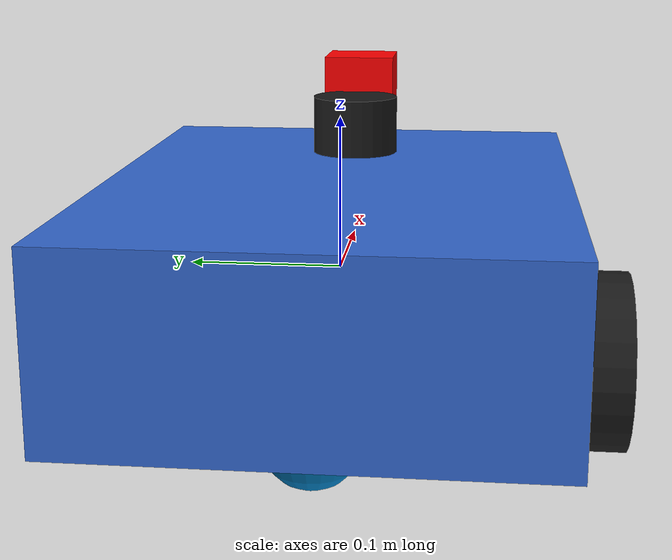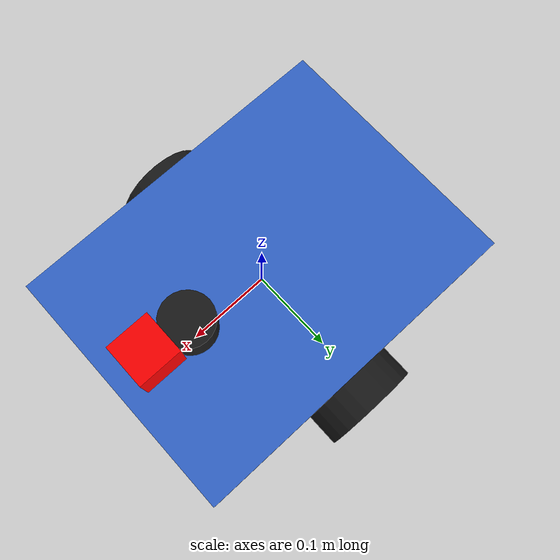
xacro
<?xml version="1.0"?>

<robot name="slam_bot"
       xmlns:xacro="http://www.ros.org/wiki/xacro">

    <!-- Base Link -->

    <link name="base_link">

        <visual>
            <geometry>
                <box size="0.4 0.3 0.12"/>
            </geometry>

            <material name="blue">
                <color rgba="0.2 0.4 0.8 1.0"/>
            </material>
        </visual>

        <collision>
            <geometry>
                <box size="0.4 0.3 0.12"/>
            </geometry>
        </collision>

        <inertial>
            <mass value="5.0"/>

            <origin xyz="0 0 0"/>

            <inertia
                ixx="0.1"
                ixy="0"
                ixz="0"
                iyy="0.1"
                iyz="0"
                izz="0.1"/>
        </inertial>

    </link>

    <!-- Left Wheel -->

    <link name="left_wheel_link">

        <visual>
            <geometry>
                <cylinder radius="0.06"
                          length="0.04"/>
            </geometry>

            <material name="black">
                <color rgba="0.1 0.1 0.1 1.0"/>
            </material>

        </visual>

        <collision>
            <geometry>
                <cylinder radius="0.06"
                          length="0.04"/>
            </geometry>
            <surface>
                <friction>
                    <ode>
                        <mu>1.0</mu>
                        <mu2>1.0</mu2>
                    </ode>
                </friction>
            </surface>
        </collision>

        <inertial>
            <mass value="0.5"/>

            <origin xyz="0 0 0"/>

            <inertia
                ixx="0.001"
                ixy="0"
                ixz="0"
                iyy="0.001"
                iyz="0"
                izz="0.001"/>
        </inertial>

    </link>

    <joint name="left_wheel_joint"
           type="continuous">

        <parent link="base_link"/>
        <child link="left_wheel_link"/>

        <origin
            xyz="0 0.17 -0.06"
            rpy="1.5708 0 0"/>

        <axis xyz="0 0 1"/>

    </joint>

    <!-- Right Wheel -->

    <link name="right_wheel_link">

        <visual>
            <geometry>
                <cylinder radius="0.06"
                          length="0.04"/>
            </geometry>

            <material name="black">
                <color rgba="0.1 0.1 0.1 1.0"/>
            </material>

        </visual>

        <collision>
            <geometry>
                <cylinder radius="0.06"
                          length="0.04"/>
            </geometry>
            <surface>
                <friction>
                    <ode>
                        <mu>1.0</mu>
                        <mu2>1.0</mu2>
                    </ode>
                </friction>
            </surface>
        </collision>

        <inertial>
            <mass value="0.5"/>

            <origin xyz="0 0 0"/>

            <inertia
                ixx="0.001"
                ixy="0"
                ixz="0"
                iyy="0.001"
                iyz="0"
                izz="0.001"/>
        </inertial>

    </link>

    <joint name="right_wheel_joint"
           type="continuous">

        <parent link="base_link"/>
        <child link="right_wheel_link"/>

        <origin
            xyz="0 -0.17 -0.06"
            rpy="1.5708 0 0"/>

        <axis xyz="0 0 1"/>

    </joint>

    <!-- Rear Caster Wheel -->

    <link name="caster_link">
        <visual>
            <geometry>
                <sphere radius="0.03"/>
            </geometry>
        </visual>

        <collision>
            <geometry>
                <sphere radius="0.03"/>
            </geometry>
            <surface>
                <friction>
                    <ode>
                        <mu>1.0</mu>
                        <mu2>1.0</mu2>
                    </ode>
                </friction>
            </surface>
        </collision>

        <inertial>
            <mass value="0.01"/>
            <origin xyz="0 0 0"/>
            <inertia
                ixx="0.00001"
                ixy="0"
                ixz="0"
                iyy="0.00001"
                iyz="0"
                izz="0.00001"/>
        </inertial>
    </link>

    <joint name="caster_joint" type="fixed">

        <parent link="base_link"/>
        <child link="caster_link"/>

        <origin xyz="0.15 0 -0.06"/>

    </joint>

    <!-- Front Caster Wheel -->

    <link name="front_caster_link">

        <visual>
            <geometry>
                <sphere radius="0.03"/>
            </geometry>
        </visual>

        <collision>
            <geometry>
                <sphere radius="0.03"/>
            </geometry>
            <surface>
                <friction>
                    <ode>
                        <mu>1.0</mu>
                        <mu2>1.0</mu2>
                    </ode>
                </friction>
            </surface>
        </collision>

        <inertial>
            <mass value="0.01"/>
            <origin xyz="0 0 0"/>
            <inertia
                ixx="0.00001"
                ixy="0"
                ixz="0"
                iyy="0.00001"
                iyz="0"
                izz="0.00001"/>
        </inertial>

    </link>

    <joint name="front_caster_joint"
        type="fixed">

        <parent link="base_link"/>
        <child link="front_caster_link"/>

        <origin xyz="-0.15 0 -0.06"/>

    </joint>

    <!-- Camera -->

    <link name="camera_link">
        <visual>
            <geometry>
                <box size="0.05 0.05 0.05"/>
            </geometry>

            <material name="red">
                <color rgba="1 0 0 1"/>
            </material>
        </visual>

        <inertial>
            <mass value="0.01"/>
            <origin xyz="0 0 0"/>
            <inertia
                ixx="0.00001"
                ixy="0"
                ixz="0"
                iyy="0.00001"
                iyz="0"
                izz="0.00001"/>
        </inertial>
    </link>

    <gazebo reference="camera_link">
        <sensor type="camera" name="front_camera">
            <update_rate>30</update_rate>
            <always_on>true</always_on>
            <visualize>true</visualize>
            <topic>/camera/image_raw</topic>
            <camera>
                <horizontal_fov>1.3962634</horizontal_fov>
                <image>
                    <width>640</width>
                    <height>480</height>
                    <format>R8G8B8</format>
                </image>
                <clip>
                    <near>0.05</near>
                    <far>100.0</far>
                </clip>
            </camera>
        </sensor>
    </gazebo>

    <joint name="camera_joint"
           type="fixed">

        <parent link="base_link"/>
        <child link="camera_link"/>

        <origin
            xyz="0.15 0 0.10"
            rpy="0 0 0"/>

    </joint>

    <!-- Lidar -->
     <link name="lidar_link">
        <visual>
            <geometry>
                <cylinder radius="0.03"
                        length="0.04"/>
            </geometry>
            <material name="black"/>
        </visual>

        <collision>
            <geometry>
                <cylinder radius="0.03"
                          length="0.04"/>
            </geometry>
        </collision>

        <inertial>
            <mass value="0.1"/>
            <origin xyz="0 0 0"/>
            <inertia
                ixx="0.0001"
                ixy="0"
                ixz="0"
                iyy="0.0001"
                iyz="0"
                izz="0.0001"/>
        </inertial>
    </link>

    <joint name="lidar_joint"
        type="fixed">
        <parent link="base_link"/>
        <child link="lidar_link"/>
        <origin xyz="0.1 0 0.08"/>
    </joint>

    <gazebo reference="lidar_link">
        <sensor name="lidar_sensor"
                type="gpu_lidar">
            <always_on>true</always_on>
            <update_rate>10</update_rate>
            <visualize>true</visualize>
            <topic>/scan</topic>
            <gz_frame_id>lidar_link</gz_frame_id>
            <ray>
                <scan>
                    <horizontal>
                        <samples>720</samples>
                        <resolution>1</resolution>
                        <min_angle>-3.14159</min_angle>
                        <max_angle>3.14159</max_angle>
                    </horizontal>
                </scan>
                <range>
                    <min>0.12</min>
                    <max>15.0</max>
                    <resolution>0.01</resolution>
                </range>
            </ray>
        </sensor>
    </gazebo>

    <!-- IMU -->

    <link name="imu_link">

        <visual>
            <geometry>
                <box size="0.03 0.03 0.02"/>
            </geometry>

            <material name="green">
                <color rgba="0 1 0 1"/>
            </material>
        </visual>

        <inertial>
            <mass value="0.01"/>
            <origin xyz="0 0 0"/>
            <inertia
                ixx="0.00001"
                ixy="0"
                ixz="0"
                iyy="0.00001"
                iyz="0"
                izz="0.00001"/>
        </inertial>
    </link>

    <joint name="imu_joint"
           type="fixed">
        <parent link="base_link"/>
        <child link="imu_link"/>
        <origin
            xyz="0 0 0.04"
            rpy="0 0 0"/>
    </joint>

    <gazebo reference="imu_link">
        <sensor name="imu_sensor"
                type="imu">
            <always_on>true</always_on>
            <update_rate>100</update_rate>
            <topic>/imu/data</topic>
        </sensor>
    </gazebo>

    <!-- Differential Drive -->

    <gazebo>
        <plugin
            filename="gz-sim-diff-drive-system"
            name="gz::sim::systems::DiffDrive">
            <left_joint>left_wheel_joint</left_joint>
            <right_joint>right_wheel_joint</right_joint>
            <wheel_separation>0.34</wheel_separation>
            <wheel_radius>0.06</wheel_radius>
            <topic>/cmd_vel</topic>
            <odom_topic>/odom</odom_topic>
            <tf_topic>/tf</tf_topic>
            <frame_id>odom</frame_id>
            <child_frame_id>base_link</child_frame_id>
            <odom_publish_frequency>50</odom_publish_frequency>
        </plugin>
    </gazebo>

</robot>
